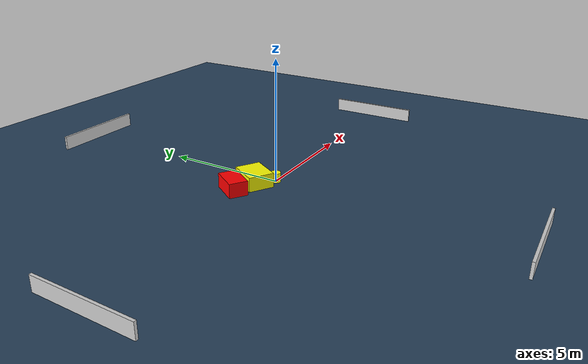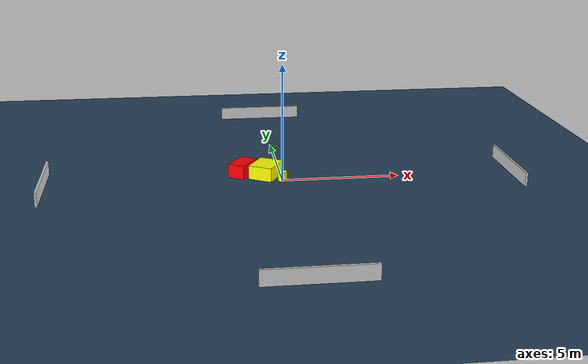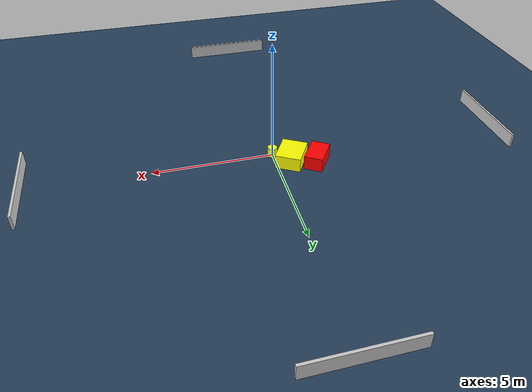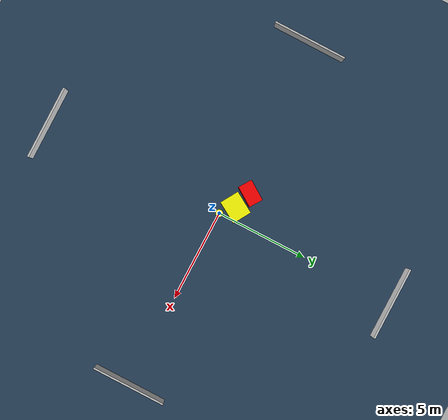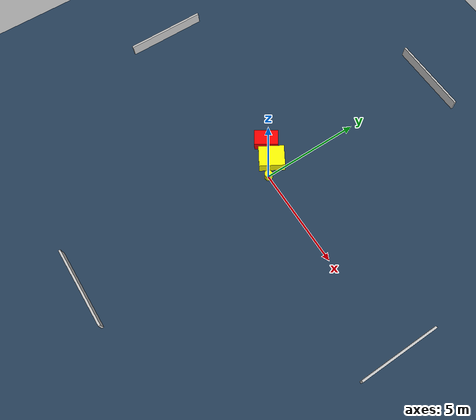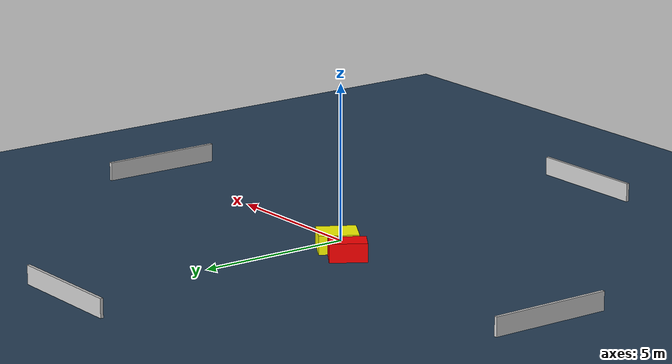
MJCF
<?xml version="1.0" ?>
<mujoco model="generated_environment">
  <option timestep="0.01" integrator="RK4" cone="elliptic"/>
  <default>
    <geom density="1"/>
  </default>
  <asset>
    <texture builtin="gradient" height="3072" name="skybox" rgb1="0.3 0.5 0.7" rgb2="0 0 0" type="skybox" width="512"/>
    <texture builtin="checker" height="300" name="groundplane" rgb1="0.2 0.3 0.4" rgb2="0.1 0.2 0.3" type="2d" width="300"/>
    <material name="groundplane" reflectance="0.2" texrepeat="5 5" texture="groundplane"/>
  </asset>
  <worldbody>
    <light dir="0 0 -1" directional="true" pos="0 0 1.5"/>
    <geom condim="3" friction="0.5 0.005 0.001" material="groundplane" name="floor" pos="0 0 0" size="0 0 0.05" type="plane"/>
    <body name="walls">
      <geom name="wall_1" condim="4" pos="-10.0 0.0 0.3" rgba="0.800000011920929 0.800000011920929 0.800000011920929 1.0" size="0.05 2.0 0.3" type="box"/>
      <geom name="wall_2" condim="4" pos="10.0 0.0 0.3" rgba="0.800000011920929 0.800000011920929 0.800000011920929 1.0" size="0.05 2.0 0.3" type="box"/>
      <geom name="wall_3" condim="4" pos="0.0 -10.0 0.3" rgba="0.800000011920929 0.800000011920929 0.800000011920929 1.0" size="2.0 0.05 0.3" type="box"/>
      <geom name="wall_4" condim="4" pos="0.0 10.0 0.3" rgba="0.800000011920929 0.800000011920929 0.800000011920929 1.0" size="2.0 0.05 0.3" type="box"/>
    </body>
    <body name="robot">
      <joint name="joint_x" type="slide" pos="0 0 0" axis="1 0 0"/>
      <joint name="joint_y" type="slide" pos="0 0 0" axis="0 1 0"/>
      <geom name="robot" type="cylinder" pos="0.0 0.0 0.2" size="0.2 0.2 0.0" mass="5.0" friction="1.0 0.005 0.0001" condim="4" rgba="1.0 1.0 0.0 1.0"/>
    </body>
    <body name="obstacle_1_movable">
      <geom name="obstacle_1_movable" condim="4" pos="-0.6456159826529204 0.6072016528065393 0.3" euler="0 0 239.26552021752363" friction="0.0 0.005 0.001" rgba="1.0 1.0 0.0 1.0" size="0.6299169299901266 0.5262912533033 0.3" type="box" mass="0.1"/>
      <joint type="free"/>
    </body>
    <body name="obstacle_2_static">
      <geom name="obstacle_2_static" condim="4" pos="-1.6326547189489287 0.9470295177650956 0.3" euler="0 0 236.43889368493026" friction="0.0 0.005 0.001" rgba="1.0 0.0 0.0 1.0" size="0.5886514556875834 0.38372457943007676 0.3" type="box"/>
    </body>
  </worldbody>
  <actuator>
    <motor name="actuator_x" joint="joint_x" gear="1" ctrlrange="-1 1"/>
    <motor name="actuator_y" joint="joint_y" gear="1" ctrlrange="-1 1"/>
  </actuator>
</mujoco>
